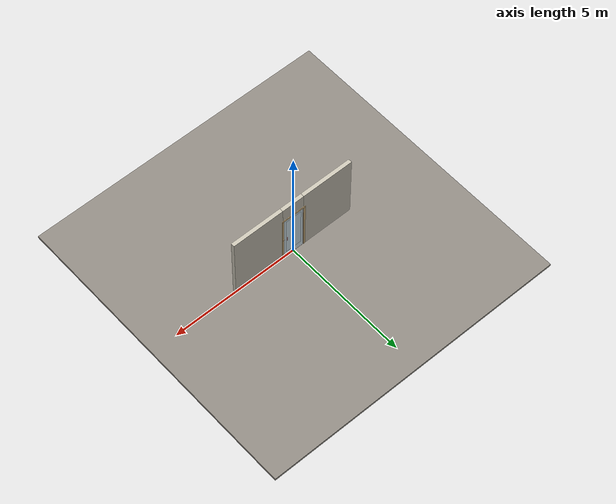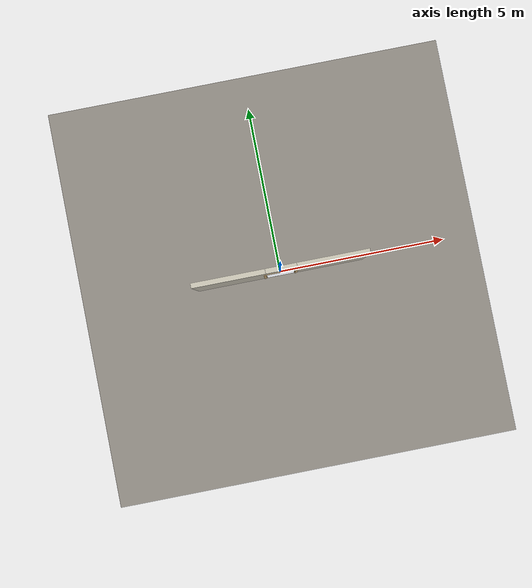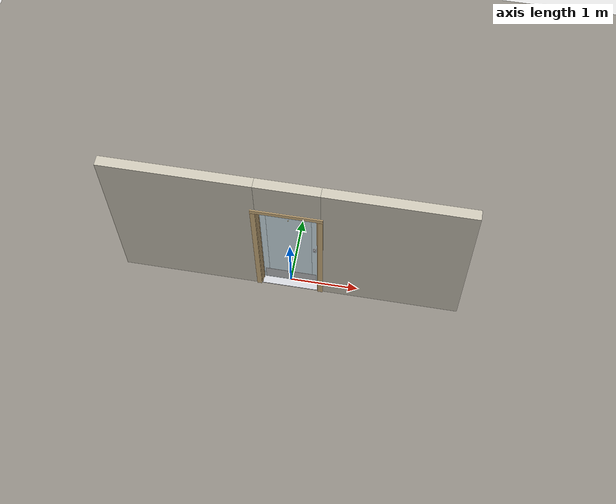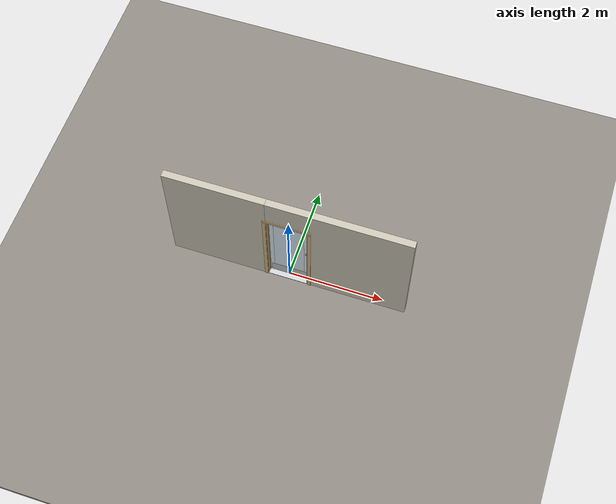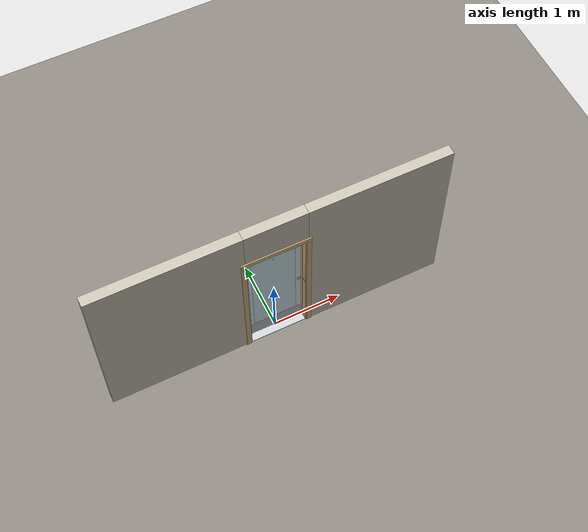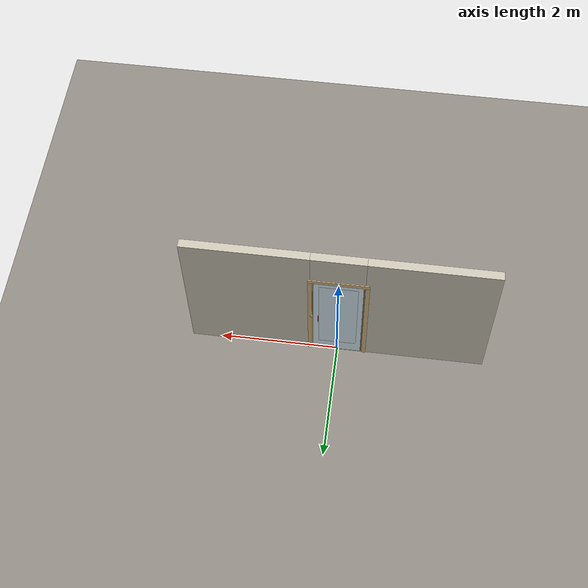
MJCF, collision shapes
<?xml version="1.0" ?>
<mujoco model="db0645_swing_single_full">
  <compiler angle="radian" meshdir="../../hardware" texturedir="../../textures" autolimits="true" inertiafromgeom="false"/>
  <option timestep="0.002" integrator="implicitfast" cone="elliptic" impratio="10" noslip_iterations="3">
    <flag multiccd="enable"/>
  </option>
  <size memory="16M"/>
  <default>
    <geom condim="4" solref="0.005 1" solimp="0.95 0.99 0.001"/>
    <joint solreflimit="0.005 1" solimplimit="0.95 0.99 0.001"/>
    <tendon solreflimit="0.005 1"/>
    <equality solref="0.002 1"/>
  </default>
  <visual>
    <headlight ambient="0.4 0.4 0.4" diffuse="0.7 0.7 0.7" specular="0.2 0.2 0.2"/>
    <quality shadowsize="4096"/>
    <map znear="0.01" zfar="60"/>
  </visual>
  <asset>
    <mesh name="peephole_f829311a59" file="peephole_f829311a59.obj"/>
    <mesh name="pull_1e5d69a91a" file="pull_1e5d69a91a.obj"/>
    <mesh name="wreath_86a3f1bf8b" file="wreath_86a3f1bf8b.obj"/>
    <material name="mat_floor" rgba="0.55 0.53 0.5 1" specular="0.2" shininess="0.15" reflectance="0"/>
    <material name="mat_wall" rgba="0.78 0.76 0.7 1" specular="0.2" shininess="0.1" reflectance="0"/>
    <material name="mat_leaf" rgba="0.85 0.92 0.95 0.25" specular="0.2" shininess="0.95" reflectance="0.1"/>
    <material name="mat_glass" rgba="0.85 0.92 0.95 0.25" specular="0.2" shininess="0.95" reflectance="0.1"/>
    <material name="mat_hinge" rgba="0.65 0.66 0.68 1" specular="0.74" shininess="0.5" reflectance="0.36"/>
    <material name="mat_op_aluminum" rgba="0.8 0.81 0.83 1" specular="0.8" shininess="0.6" reflectance="0.4"/>
    <material name="mat_op_stainless" rgba="0.75 0.76 0.77 1" specular="0.8" shininess="0.65" reflectance="0.4"/>
    <material name="mat_bolt" rgba="0.85 0.66 0.3 1" specular="0.8" shininess="0.75" reflectance="0.4"/>
    <material name="mat_frame" rgba="0.82 0.7 0.5 1" specular="0.2" shininess="0.45" reflectance="0"/>
    <material name="mat_seal" rgba="0.1 0.1 0.1 1" specular="0.2" shininess="0.1" reflectance="0"/>
    <material name="mat_threshold" rgba="0.8 0.81 0.83 1" specular="0.8" shininess="0.6" reflectance="0.4"/>
    <material name="mat_kick" rgba="0.75 0.76 0.77 1" specular="0.8" shininess="0.65" reflectance="0.4"/>
    <material name="mat_peephole" rgba="0.85 0.66 0.3 1" specular="0.8" shininess="0.75" reflectance="0.4"/>
    <material name="mat_wreath" rgba="0.12 0.3 0.12 1" specular="0.2" shininess="0.05" reflectance="0"/>
    <material name="mat_wreath_hook" rgba="0.85 0.66 0.3 1" specular="0.8" shininess="0.75" reflectance="0.4"/>
    <texture name="skybox" type="skybox" builtin="gradient" rgb1="0.6 0.7 0.85" rgb2="0.9 0.92 0.95" width="256" height="256"/>
  </asset>
  <worldbody>
    <light name="sun" pos="1.5 -2.5 4" dir="-0.3 0.5 -0.8" directional="true" diffuse="0.8 0.8 0.8" specular="0.3 0.3 0.3" castshadow="true"/>
    <light name="fill" pos="-1.5 2.5 3" dir="0.3 -0.5 -0.7" directional="true" diffuse="0.35 0.35 0.4" castshadow="false"/>
    <camera name="robot_view" pos="0 -2.595187 1.734312" xyaxes="1 0 0 0 0.26963 0.962964" fovy="52"/>
    <camera name="far_view" pos="0 2.489187 1.734312" xyaxes="-1 0 0 0 -0.26963 0.962964" fovy="52"/>
    <camera name="iso" pos="1.932062 -2.188438 2.141063" xyaxes="0.741536 0.670913 0 -0.242917 0.268487 0.932151" fovy="46"/>
    <camera name="detail_handle" pos="0.496 -0.7275 1.33" xyaxes="0.97561 0.219512 0 -0.070934 0.315262 0.94635" fovy="38"/>
    <geom name="floor" type="box" size="6 6 0.05" pos="0 0 -0.05" material="mat_floor" group="0" contype="1" conaffinity="1" friction="0.8 0.005 0.0001" density="2400"/>
    <geom name="wall_left" type="box" size="1.0355 0.0725 1.35" pos="-1.4645 -0.053 1.35" material="mat_wall" group="0" contype="1" conaffinity="1" friction="0.6 0.005 0.0001" density="800"/>
    <geom name="wall_right" type="box" size="1.0205 0.0725 1.35" pos="1.4795 -0.053 1.35" material="mat_wall" group="0" contype="1" conaffinity="1" friction="0.6 0.005 0.0001" density="800"/>
    <geom name="wall_header" type="box" size="0.444 0.0725 0.303" pos="0.015 -0.053 2.397" material="mat_wall" group="0" contype="1" conaffinity="1" friction="0.6 0.005 0.0001" density="800"/>
    <geom name="jamb_hinge" type="box" size="0.0095 0.0725 1.0225" pos="-0.4195 -0.053 1.0225" material="mat_frame" group="0" contype="1" conaffinity="1" friction="0.6 0.005 0.0001" density="400"/>
    <geom name="strike_1050_wall_n" type="box" size="0.0245 0.06 0.0115" pos="0.4345 -0.0655 1.05" material="mat_frame" group="0" contype="1" conaffinity="1" friction="0.6 0.005 0.0001" density="400"/>
    <geom name="strike_1050_wall_p" type="box" size="0.0245 0.008 0.0115" pos="0.4345 0.0135 1.05" material="mat_frame" group="0" contype="1" conaffinity="1" friction="0.6 0.005 0.0001" density="400"/>
    <geom name="strike_1050_ramp" type="box" size="0.0245 0.015977 0.0115" pos="0.438502 0.028066 1.05" quat="0.984601 0 0 -0.174819" material="mat_frame" group="0" contype="1" conaffinity="1" friction="0.12 0.005 0.0001" density="400"/>
    <geom name="strike_1050_back" type="box" size="0.0175 0.0055 0.0115" pos="0.4415 0 1.05" material="mat_frame" group="0" contype="1" conaffinity="1" friction="0.6 0.005 0.0001" density="400"/>
    <geom name="jamb_strike_0" type="box" size="0.0245 0.0725 0.51925" pos="0.4345 -0.053 0.51925" material="mat_frame" group="0" contype="1" conaffinity="1" friction="0.6 0.005 0.0001" density="400"/>
    <geom name="jamb_strike_1" type="box" size="0.0245 0.0725 0.49175" pos="0.4345 -0.053 1.55325" material="mat_frame" group="0" contype="1" conaffinity="1" friction="0.6 0.005 0.0001" density="400"/>
    <geom name="jamb_head" type="box" size="0.444 0.0725 0.0095" pos="0.015 -0.053 2.0545" material="mat_frame" group="0" contype="1" conaffinity="1" friction="0.6 0.005 0.0001" density="400"/>
    <geom name="head_stud" type="box" size="0.444 0.0725 0.015" pos="0.015 -0.053 2.079" material="mat_wall" group="0" contype="1" conaffinity="1" friction="0.6 0.005 0.0001" density="500"/>
    <geom name="stop_hinge" type="box" size="0.0055 0.016 1.0225" pos="-0.4045 -0.029 1.0225" material="mat_frame" group="0" contype="1" conaffinity="1" friction="0.6 0.005 0.0001" density="400"/>
    <geom name="stop_strike" type="box" size="0.0055 0.016 1.0225" pos="0.4045 -0.029 1.0225" material="mat_frame" group="0" contype="1" conaffinity="1" friction="0.6 0.005 0.0001" density="400"/>
    <geom name="stop_head" type="box" size="0.41 0.016 0.0055" pos="0 -0.029 2.0395" material="mat_frame" group="0" contype="1" conaffinity="1" friction="0.6 0.005 0.0001" density="400"/>
    <geom name="seal_hinge" type="box" size="0.004 0.003 1.0225" pos="-0.407 -0.0155 1.0225" material="mat_seal" group="1" contype="0" conaffinity="0" density="1100"/>
    <geom name="seal_strike" type="box" size="0.004 0.003 1.0225" pos="0.407 -0.0155 1.0225" material="mat_seal" group="1" contype="0" conaffinity="0" density="1100"/>
    <geom name="seal_head" type="box" size="0.39 0.003 0.008" pos="0 -0.0155 2.033" material="mat_seal" group="1" contype="0" conaffinity="0" density="1100"/>
    <geom name="casing_l_n" type="box" size="0.035 0.008 1.032" pos="-0.459 -0.1335 1.0225" material="mat_frame" group="2" contype="0" conaffinity="0" density="400"/>
    <geom name="casing_r_n" type="box" size="0.035 0.008 1.032" pos="0.459 -0.1335 1.0225" material="mat_frame" group="2" contype="0" conaffinity="0" density="400"/>
    <geom name="casing_h_n" type="box" size="0.494 0.008 0.035" pos="0 -0.1335 2.094" material="mat_frame" group="2" contype="0" conaffinity="0" density="400"/>
    <geom name="casing_l_p" type="box" size="0.035 0.008 1.032" pos="-0.459 0.0275 1.0225" material="mat_frame" group="2" contype="0" conaffinity="0" density="400"/>
    <geom name="casing_r_p" type="box" size="0.035 0.008 1.032" pos="0.459 0.0275 1.0225" material="mat_frame" group="2" contype="0" conaffinity="0" density="400"/>
    <geom name="casing_h_p" type="box" size="0.494 0.008 0.035" pos="0 0.0275 2.094" material="mat_frame" group="2" contype="0" conaffinity="0" density="400"/>
    <geom name="threshold" type="box" size="0.429 0.0725 0.0065" pos="0 -0.053 0.0065" material="mat_threshold" group="0" contype="1" conaffinity="1" friction="0.5 0.005 0.0001" density="2700"/>
    <site name="approach_point" pos="0 -1.5 0" quat="1 0 0 0" size="0.05" rgba="0.2 0.9 0.2 0.5" group="4"/>
    <site name="goal_point" pos="0 1.5 0" quat="1 0 0 0" size="0.05" rgba="0.2 0.9 0.2 0.5" group="4"/>
    <site name="door_plane_center" pos="0 0 1.0225" quat="1 0 0 0" size="0.02" rgba="0.2 0.9 0.2 0.5" group="4"/>
    <body name="leaf" pos="-0.41 0 0">
      <inertial pos="0.389267 -0.004273 0.958118" mass="33.423154" quat="-0.499267 0.498874 0.498854 0.502994" diaginertia="2.046782725 12.8668687 14.87626996"/>
      <joint name="leaf_hinge" type="hinge" axis="0 0 1" pos="0.003 0.0195 0" limited="true" range="0 1.745329" solreflimit="0.02 1" damping="2.160326" frictionloss="1.489555" stiffness="6.6" springref="-0.409091" armature="0.02"/>
      <geom name="leaf_slab" type="box" size="0.4065 0.0125 1.012" pos="0.4095 0 1.029" material="mat_leaf" group="0" contype="1" conaffinity="1" friction="0.4 0.005 0.0001" density="1"/>
      <geom name="leaf_glass_0" type="box" size="0.3165 0.0133 0.85008" pos="0.4095 0 1.08972" material="mat_glass" group="1" contype="0" conaffinity="0" density="1"/>
      <geom name="hinge_continuous" type="cylinder" size="0.0088 1.002" pos="0.003 0.0195 1.029" material="mat_hinge" group="1" contype="0" conaffinity="0" density="2700"/>
      <geom name="leaf_inside_pull_p" type="mesh" mesh="pull_1e5d69a91a" pos="0.726 0.0125 1.05" quat="-0.707107 0.707107 0 0" material="mat_op_stainless" group="1" contype="0" conaffinity="0" density="3000"/>
      <geom name="leaf_inside_pull_col_p" type="capsule" size="0.0095 0.08" pos="0.726 0.0725 1.05" material="mat_op_stainless" group="3" contype="1" conaffinity="1" rgba="0.8 0.3 0.3 0.25" friction="0.7 0.01 0.0001" density="3000"/>
      <geom name="leaf_pushbutton_housing" type="box" size="0.02 0.006 0.045" pos="0.771 -0.0185 1.05" material="mat_op_aluminum" group="1" contype="0" conaffinity="0" density="2700"/>
      <geom name="leaf_latch_bolt_faceplate" type="box" size="0.0006 0.01 0.0215" pos="0.8154 0 1.05" material="mat_bolt" group="1" contype="0" conaffinity="0" density="8500"/>
      <geom name="kick_plate_n" type="box" size="0.3765 0.0008 0.125" pos="0.4095 -0.0133 0.152" material="mat_kick" group="2" contype="0" conaffinity="0" density="7900"/>
      <geom name="peephole" type="mesh" mesh="peephole_f829311a59" pos="0.4095 -0.0125 1.517" quat="0.707107 0.707107 0 0" material="mat_peephole" group="2" contype="0" conaffinity="0" density="8500"/>
      <geom name="wreath" type="mesh" mesh="wreath_86a3f1bf8b" pos="0.4095 -0.0125 1.59572" quat="0.707107 0.707107 0 0" material="mat_wreath" group="2" contype="0" conaffinity="0" density="200"/>
      <geom name="wreath_hook" type="cylinder" size="0.004 0.008" pos="0.4095 -0.0195 1.78372" quat="0.707107 -0.707107 0 0" material="mat_wreath_hook" group="2" contype="0" conaffinity="0" density="8500"/>
      <site name="leaf_inside_pull_grip_p" pos="0.726 0.0725 1.05" quat="1 0 0 0" size="0.012" rgba="0.2 0.9 0.2 0.5" group="4"/>
      <site name="leaf_edge_mid" pos="0.816 0 1.012" quat="1 0 0 0" size="0.02" rgba="0.2 0.9 0.2 0.5" group="4"/>
      <body name="leaf_pushbutton" pos="0.771 -0.0225 1.05">
        <inertial pos="0 -0.006 0" mass="0.010179" quat="0 0 0.707107 0.707107" diaginertia="0.000000377 0.000000377 0.000000509"/>
        <joint name="leaf_pushbutton_slide" type="slide" axis="0 1 0" limited="true" range="0 0.006" damping="16.008936" frictionloss="0.5" stiffness="400" springref="-0.0075" armature="0.15"/>
        <geom name="leaf_pushbutton_geom" type="cylinder" size="0.01 0.006" pos="0 -0.006 0" quat="0.707107 -0.707107 0 0" material="mat_op_aluminum" group="0" contype="1" conaffinity="1" friction="0.6 0.005 0.0001" density="2700"/>
        <site name="leaf_push" pos="0 -0.012 0" quat="1 0 0 0" size="0.01" rgba="0.2 0.9 0.2 0.5" group="4"/>
      </body>
      <body name="leaf_latch_bolt" pos="0.816 0 1.05">
        <inertial pos="-0.008 0 0" mass="0.014242" quat="0 0 0.707107 0.707107" diaginertia="0.00000011 0.000001386 0.000001386"/>
        <joint name="leaf_latch_bolt_slide" type="slide" axis="-1 0 0" limited="true" range="0 0.01" damping="2" frictionloss="0.3" stiffness="300" springref="-0.006667" armature="0.1"/>
        <geom name="leaf_latch_bolt_capsule" type="capsule" size="0.004 0.014" pos="-0.008 0 0" quat="0.707107 0 0.707107 0" material="mat_bolt" group="0" contype="1" conaffinity="1" friction="0.2 0.005 0.0001" density="8500"/>
      </body>
    </body>
  </worldbody>
  <tendon>
    <fixed name="leaf_latch_bolt_coupling" limited="true" range="0 10">
      <joint joint="leaf_latch_bolt_slide" coef="1"/>
      <joint joint="leaf_pushbutton_slide" coef="-2"/>
    </fixed>
  </tendon>
  <sensor>
    <jointpos name="leaf_hinge_pos" joint="leaf_hinge"/>
    <jointvel name="leaf_hinge_vel" joint="leaf_hinge"/>
    <jointpos name="leaf_pushbutton_slide_pos" joint="leaf_pushbutton_slide"/>
    <jointvel name="leaf_pushbutton_slide_vel" joint="leaf_pushbutton_slide"/>
    <jointpos name="leaf_latch_bolt_slide_pos" joint="leaf_latch_bolt_slide"/>
    <jointvel name="leaf_latch_bolt_slide_vel" joint="leaf_latch_bolt_slide"/>
  </sensor>
</mujoco>
